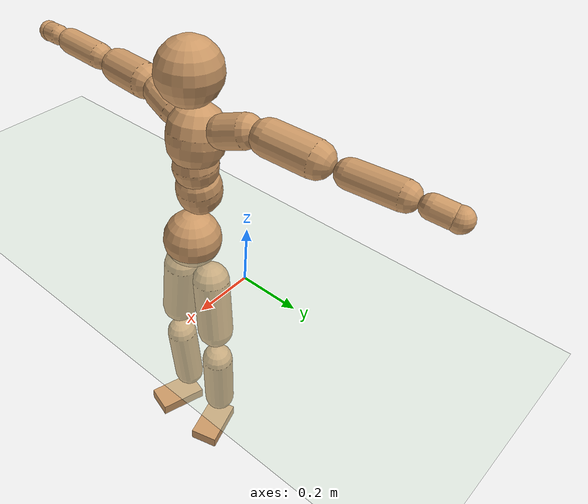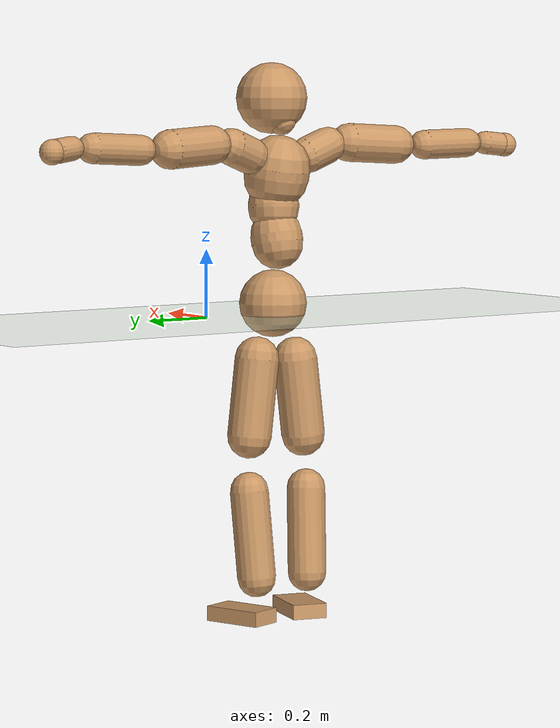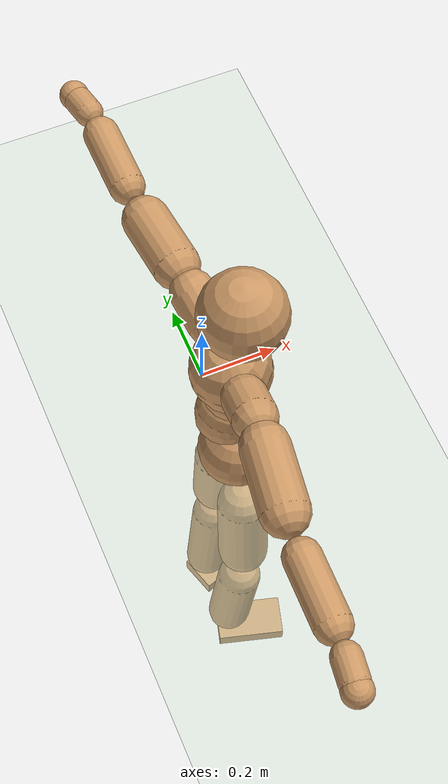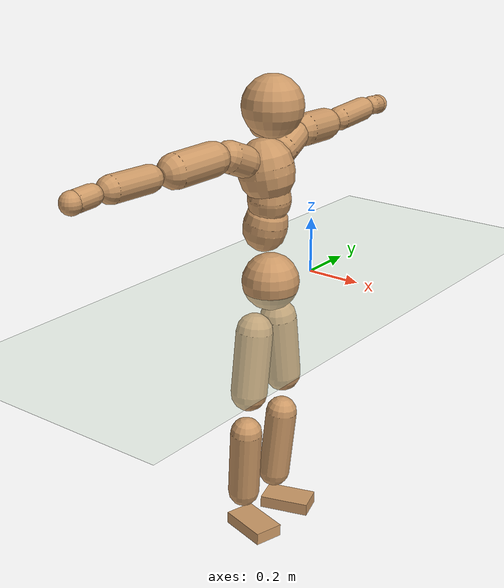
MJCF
<mujoco model="humanoid">
  <compiler coordinate="local"/>
  <default>
    <joint damping="0.0" armature="0.01" stiffness="0.0" limited="true"/>
    <geom conaffinity="1" condim="3" contype="7" margin="0.001" rgba="0.8 0.6 .4 1"/>
  </default>
  <asset>
    <texture type="skybox" builtin="gradient" rgb1=".4 .5 .6" rgb2="0 0 0" width="100" height="100"/>
    <texture builtin="flat" height="1278" mark="cross" markrgb="1 1 1" name="texgeom" random="0.01" rgb1="0.8 0.6 0.4" rgb2="0.8 0.6 0.4" type="cube" width="127"/>
    <texture builtin="checker" height="100" name="texplane" rgb1="0 0 0" rgb2="0.8 0.8 0.8" type="2d" width="100"/>
    <material name="MatPlane" reflectance="0.5" shininess="1" specular="1" texrepeat="60 60" texture="texplane"/>
    <material name="geom" texture="texgeom" texuniform="true"/>
  </asset>
  <worldbody>
    <light cutoff="100" diffuse="1 1 1" dir="-0 0 -1.3" directional="true" exponent="1" pos="0 0 1.3" specular=".1 .1 .1"/>
    <geom conaffinity="1" condim="3" name="floor" pos="0 0 0" rgba="0.8 0.9 0.8 1" size="100 100 .2" type="plane" material="MatPlane"/>
    <body name="Pelvis" pos="-0.0021 -0.2373 0.0321">
      <freejoint name="Pelvis"/>
      <geom type="sphere" contype="1" conaffinity="1" density="500" size="0.1003" pos="0.0000 0.0000 0.0000" name="Pelvis"/>
      <body name="L_Hip" pos="-0.0174 0.0615 -0.083">
        <joint name="L_Hip_x" type="hinge" pos="0 0 0" axis="1 0 0" stiffness="800" damping="80" armature="0.02" range="-180.0000 180.0000"/>
        <joint name="L_Hip_y" type="hinge" pos="0 0 0" axis="0 1 0" stiffness="800" damping="80" armature="0.02" range="-180.0000 180.0000"/>
        <joint name="L_Hip_z" type="hinge" pos="0 0 0" axis="0 0 1" stiffness="800" damping="80" armature="0.02" range="-180.0000 180.0000"/>
        <geom type="capsule" contype="1" conaffinity="1" density="500" fromto="0.0011 0.0084 -0.0768 0.0046 0.0338 -0.3070" size="0.0653" name="L_Hip"/>
        <body name="L_Knee" pos="0.0057 0.0422 -0.3838">
          <joint name="L_Knee_x" type="hinge" pos="0 0 0" axis="1 0 0" stiffness="800" damping="80" armature="0.02" range="-180.0000 180.0000"/>
          <joint name="L_Knee_y" type="hinge" pos="0 0 0" axis="0 1 0" stiffness="800" damping="80" armature="0.02" range="-180.0000 180.0000"/>
          <joint name="L_Knee_z" type="hinge" pos="0 0 0" axis="0 0 1" stiffness="800" damping="80" armature="0.02" range="-180.0000 180.0000"/>
          <geom type="capsule" contype="1" conaffinity="1" density="500" fromto="-0.0078 -0.0031 -0.0856 -0.0313 -0.0126 -0.3425" size="0.0573" name="L_Knee"/>
          <body name="L_Ankle" pos="-0.0391 -0.0157 -0.4281">
            <joint name="L_Ankle_x" type="hinge" pos="0 0 0" axis="1 0 0" stiffness="800" damping="80" armature="0.02" range="-180.0000 180.0000"/>
            <joint name="L_Ankle_y" type="hinge" pos="0 0 0" axis="0 1 0" stiffness="800" damping="80" armature="0.02" range="-180.0000 180.0000"/>
            <joint name="L_Ankle_z" type="hinge" pos="0 0 0" axis="0 0 1" stiffness="800" damping="80" armature="0.02" range="-180.0000 180.0000"/>
            <geom type="box" contype="1" conaffinity="1" density="500" pos="0.0614 0.0191 -0.0300" size="0.0906 0.0513 0.0223" quat="0.9886 0.0000 0.0000 0.1504" name="L_Ankle"/>
            <body name="L_Toe" pos="0.1227 0.0382 -0.06">
              <joint name="L_Toe_x" type="hinge" pos="0 0 0" axis="1 0 0" stiffness="500" damping="50" armature="0.02" range="-180.0000 180.0000"/>
              <joint name="L_Toe_y" type="hinge" pos="0 0 0" axis="0 1 0" stiffness="500" damping="50" armature="0.02" range="-180.0000 180.0000"/>
              <joint name="L_Toe_z" type="hinge" pos="0 0 0" axis="0 0 1" stiffness="500" damping="50" armature="0.02" range="-180.0000 180.0000"/>
              <geom type="box" contype="1" conaffinity="1" density="500" pos="0.0000 0.0000 0.0283" size="0.0011 0.0025 0.001" quat="0.9879 0.0000 0.0000 0.1553" name="L_Toe"/>
            </body>
          </body>
        </body>
      </body>
      <body name="R_Hip" pos="-0.0126 -0.0636 -0.0912">
        <joint name="R_Hip_x" type="hinge" pos="0 0 0" axis="1 0 0" stiffness="800" damping="80" armature="0.02" range="-180.0000 180.0000"/>
        <joint name="R_Hip_y" type="hinge" pos="0 0 0" axis="0 1 0" stiffness="800" damping="80" armature="0.02" range="-180.0000 180.0000"/>
        <joint name="R_Hip_z" type="hinge" pos="0 0 0" axis="0 0 1" stiffness="800" damping="80" armature="0.02" range="-180.0000 180.0000"/>
        <geom type="capsule" contype="1" conaffinity="1" density="500" fromto="-0.0015 -0.0084 -0.0765 -0.0061 -0.0335 -0.3058" size="0.0648" name="R_Hip"/>
        <body name="R_Knee" pos="-0.0076 -0.0419 -0.3823">
          <joint name="R_Knee_x" type="hinge" pos="0 0 0" axis="1 0 0" stiffness="800" damping="80" armature="0.02" range="-180.0000 180.0000"/>
          <joint name="R_Knee_y" type="hinge" pos="0 0 0" axis="0 1 0" stiffness="800" damping="80" armature="0.02" range="-180.0000 180.0000"/>
          <joint name="R_Knee_z" type="hinge" pos="0 0 0" axis="0 0 1" stiffness="800" damping="80" armature="0.02" range="-180.0000 180.0000"/>
          <geom type="capsule" contype="1" conaffinity="1" density="500" fromto="-0.0073 0.0039 -0.0842 -0.0291 0.0157 -0.3368" size="0.0573" name="R_Knee"/>
          <body name="R_Ankle" pos="-0.0363 0.0196 -0.421">
            <joint name="R_Ankle_x" type="hinge" pos="0 0 0" axis="1 0 0" stiffness="800" damping="80" armature="0.02" range="-180.0000 180.0000"/>
            <joint name="R_Ankle_y" type="hinge" pos="0 0 0" axis="0 1 0" stiffness="800" damping="80" armature="0.02" range="-180.0000 180.0000"/>
            <joint name="R_Ankle_z" type="hinge" pos="0 0 0" axis="0 0 1" stiffness="800" damping="80" armature="0.02" range="-180.0000 180.0000"/>
            <geom type="box" contype="1" conaffinity="1" density="500" pos="0.0655 -0.0182 -0.0306" size="0.0912 0.0527 0.0221" quat="0.9909 0.0000 0.0000 -0.1350" name="R_Ankle"/>
            <body name="R_Toe" pos="0.131 -0.0364 -0.0612">
              <joint name="R_Toe_x" type="hinge" pos="0 0 0" axis="1 0 0" stiffness="500" damping="50" armature="0.02" range="-180.0000 180.0000"/>
              <joint name="R_Toe_y" type="hinge" pos="0 0 0" axis="0 1 0" stiffness="500" damping="50" armature="0.02" range="-180.0000 180.0000"/>
              <joint name="R_Toe_z" type="hinge" pos="0 0 0" axis="0 0 1" stiffness="500" damping="50" armature="0.02" range="-180.0000 180.0000"/>
              <geom type="box" contype="1" conaffinity="1" density="500" pos="0.0000 0.0000 0.0301" size="0.0011 0.0026 0.0011" quat="0.9920 0.0000 0.0000 -0.1261" name="R_Toe"/>
            </body>
          </body>
        </body>
      </body>
      <body name="Torso" pos="-0.0415 0.0045 0.1255">
        <joint name="Torso_x" type="hinge" pos="0 0 0" axis="1 0 0" stiffness="1000" damping="100" armature="0.02" range="-180.0000 180.0000"/>
        <joint name="Torso_y" type="hinge" pos="0 0 0" axis="0 1 0" stiffness="1000" damping="100" armature="0.02" range="-180.0000 180.0000"/>
        <joint name="Torso_z" type="hinge" pos="0 0 0" axis="0 0 1" stiffness="1000" damping="100" armature="0.02" range="-180.0000 180.0000"/>
        <geom type="capsule" contype="1" conaffinity="1" density="500" fromto="0.0155 0.0024 0.0815 0.0104 0.0016 0.0543" size="0.076539" name="Torso"/>
        <body name="Spine" pos="0.0259 0.004 0.1359">
          <joint name="Spine_x" type="hinge" pos="0 0 0" axis="1 0 0" stiffness="1000" damping="100" armature="0.02" range="-180.0000 180.0000"/>
          <joint name="Spine_y" type="hinge" pos="0 0 0" axis="0 1 0" stiffness="1000" damping="100" armature="0.02" range="-180.0000 180.0000"/>
          <joint name="Spine_z" type="hinge" pos="0 0 0" axis="0 0 1" stiffness="1000" damping="100" armature="0.02" range="-180.0000 180.0000"/>
          <geom type="capsule" contype="1" conaffinity="1" density="500" fromto="0.0026 -0.0014 0.0331 0.0017 -0.0009 0.0220" size="0.075516" name="Spine"/>
          <body name="Chest" pos="0.0043 -0.0023 0.0551">
            <joint name="Chest_x" type="hinge" pos="0 0 0" axis="1 0 0" stiffness="1000" damping="100" armature="0.02" range="-180.0000 180.0000"/>
            <joint name="Chest_y" type="hinge" pos="0 0 0" axis="0 1 0" stiffness="1000" damping="100" armature="0.02" range="-180.0000 180.0000"/>
            <joint name="Chest_z" type="hinge" pos="0 0 0" axis="0 0 1" stiffness="1000" damping="100" armature="0.02" range="-180.0000 180.0000"/>
            <geom type="capsule" contype="1" conaffinity="1" density="500" fromto="-0.0148 -0.0047 0.0865 -0.0098 -0.0031 0.0577" size="0.096441" name="Chest"/>
            <body name="Neck" pos="-0.0348 -0.0132 0.2074">
              <joint name="Neck_x" type="hinge" pos="0 0 0" axis="1 0 0" stiffness="500" damping="50" armature="0.02" range="-180.0000 180.0000"/>
              <joint name="Neck_y" type="hinge" pos="0 0 0" axis="0 1 0" stiffness="500" damping="50" armature="0.02" range="-180.0000 180.0000"/>
              <joint name="Neck_z" type="hinge" pos="0 0 0" axis="0 0 1" stiffness="500" damping="50" armature="0.02" range="-180.0000 180.0000"/>
              <geom type="capsule" contype="1" conaffinity="1" density="500" fromto="0.0095 0.0021 0.0165 0.0379 0.0082 0.0660" size="0.042408" name="Neck"/>
              <body name="Head" pos="0.0474 0.0103 0.0825">
                <joint name="Head_x" type="hinge" pos="0 0 0" axis="1 0 0" stiffness="500" damping="50" armature="0.02" range="-180.0000 180.0000"/>
                <joint name="Head_y" type="hinge" pos="0 0 0" axis="0 1 0" stiffness="500" damping="50" armature="0.02" range="-180.0000 180.0000"/>
                <joint name="Head_z" type="hinge" pos="0 0 0" axis="0 0 1" stiffness="500" damping="50" armature="0.02" range="-180.0000 180.0000"/>
                <geom type="sphere" contype="1" conaffinity="1" density="500" size="0.1049" pos="0.0000 0.0000 0.0000" name="Head"/>
              </body>
            </body>
            <body name="L_Thorax" pos="-0.0167 0.0736 0.1137">
              <joint name="L_Thorax_x" type="hinge" pos="0 0 0" axis="1 0 0" stiffness="500" damping="50" armature="0.02" range="-180.0000 180.0000"/>
              <joint name="L_Thorax_y" type="hinge" pos="0 0 0" axis="0 1 0" stiffness="500" damping="50" armature="0.02" range="-180.0000 180.0000"/>
              <joint name="L_Thorax_z" type="hinge" pos="0 0 0" axis="0 0 1" stiffness="500" damping="50" armature="0.02" range="-180.0000 180.0000"/>
              <geom type="capsule" contype="1" conaffinity="1" density="500" fromto="-0.0041 0.0251 0.0091 -0.0163 0.1005 0.0366" size="0.0542" name="L_Thorax"/>
              <body name="L_Shoulder" pos="-0.0204 0.1256 0.0457">
                <joint name="L_Shoulder_x" type="hinge" pos="0 0 0" axis="1 0 0" stiffness="500" damping="50" armature="0.02" range="-720.0000 720.0000"/>
                <joint name="L_Shoulder_y" type="hinge" pos="0 0 0" axis="0 1 0" stiffness="500" damping="50" armature="0.02" range="-720.0000 720.0000"/>
                <joint name="L_Shoulder_z" type="hinge" pos="0 0 0" axis="0 0 1" stiffness="500" damping="50" armature="0.02" range="-720.0000 720.0000"/>
                <geom type="capsule" contype="1" conaffinity="1" density="500" fromto="-0.0050 0.0508 -0.0032 -0.0201 0.2032 -0.0127" size="0.0573" name="L_Shoulder"/>
                <body name="L_Elbow" pos="-0.0251 0.254 -0.0159">
                  <joint name="L_Elbow_x" type="hinge" pos="0 0 0" axis="1 0 0" stiffness="500" damping="50" armature="0.02" range="-720.0000 720.0000"/>
                  <joint name="L_Elbow_y" type="hinge" pos="0 0 0" axis="0 1 0" stiffness="500" damping="50" armature="0.02" range="-720.0000 720.0000"/>
                  <joint name="L_Elbow_z" type="hinge" pos="0 0 0" axis="0 0 1" stiffness="500" damping="50" armature="0.02" range="-720.0000 720.0000"/>
                  <geom type="capsule" contype="1" conaffinity="1" density="500" fromto="-0.0013 0.0537 0.0027 -0.0051 0.2150 0.0109" size="0.0438" name="L_Elbow"/>
                  <body name="L_Wrist" pos="-0.0064 0.2687 0.0137">
                    <joint name="L_Wrist_x" type="hinge" pos="0 0 0" axis="1 0 0" stiffness="300" damping="30" armature="0.02" range="-180.0000 180.0000"/>
                    <joint name="L_Wrist_y" type="hinge" pos="0 0 0" axis="0 1 0" stiffness="300" damping="30" armature="0.02" range="-180.0000 180.0000"/>
                    <joint name="L_Wrist_z" type="hinge" pos="0 0 0" axis="0 0 1" stiffness="300" damping="30" armature="0.02" range="-180.0000 180.0000"/>
                    <geom type="capsule" contype="1" conaffinity="1" density="500" fromto="-0.0032 0.0176 -0.0022 -0.0127 0.0704 -0.0087" size="0.0347" name="L_Wrist"/>
                    <body name="L_Hand" pos="-0.0159 0.088 -0.0109">
                      <joint name="L_Hand_x" type="hinge" pos="0 0 0" axis="1 0 0" stiffness="300" damping="30" armature="0.02" range="-180.0000 180.0000"/>
                      <joint name="L_Hand_y" type="hinge" pos="0 0 0" axis="0 1 0" stiffness="300" damping="30" armature="0.02" range="-180.0000 180.0000"/>
                      <joint name="L_Hand_z" type="hinge" pos="0 0 0" axis="0 0 1" stiffness="300" damping="30" armature="0.02" range="-180.0000 180.0000"/>
                      <geom type="sphere" contype="1" conaffinity="1" density="500" size="0.0361" pos="0.0000 0.0000 0.0000" name="L_Hand"/>
                    </body>
                  </body>
                </body>
              </body>
            </body>
            <body name="R_Thorax" pos="-0.0223 -0.0838 0.1117">
              <joint name="R_Thorax_x" type="hinge" pos="0 0 0" axis="1 0 0" stiffness="500" damping="50" armature="0.02" range="-180.0000 180.0000"/>
              <joint name="R_Thorax_y" type="hinge" pos="0 0 0" axis="0 1 0" stiffness="500" damping="50" armature="0.02" range="-180.0000 180.0000"/>
              <joint name="R_Thorax_z" type="hinge" pos="0 0 0" axis="0 0 1" stiffness="500" damping="50" armature="0.02" range="-180.0000 180.0000"/>
              <geom type="capsule" contype="1" conaffinity="1" density="500" fromto="-0.0019 -0.0231 0.0095 -0.0076 -0.0923 0.0381" size="0.0541" name="R_Thorax"/>
              <body name="R_Shoulder" pos="-0.0096 -0.1154 0.0477">
                <joint name="R_Shoulder_x" type="hinge" pos="0 0 0" axis="1 0 0" stiffness="500" damping="50" armature="0.02" range="-720.0000 720.0000"/>
                <joint name="R_Shoulder_y" type="hinge" pos="0 0 0" axis="0 1 0" stiffness="500" damping="50" armature="0.02" range="-720.0000 720.0000"/>
                <joint name="R_Shoulder_z" type="hinge" pos="0 0 0" axis="0 0 1" stiffness="500" damping="50" armature="0.02" range="-720.0000 720.0000"/>
                <geom type="capsule" contype="1" conaffinity="1" density="500" fromto="-0.0069 -0.0520 -0.0028 -0.0277 -0.2081 -0.0111" size="0.0579" name="R_Shoulder"/>
                <body name="R_Elbow" pos="-0.0346 -0.2601 -0.0139">
                  <joint name="R_Elbow_x" type="hinge" pos="0 0 0" axis="1 0 0" stiffness="500" damping="50" armature="0.02" range="-720.0000 720.0000"/>
                  <joint name="R_Elbow_y" type="hinge" pos="0 0 0" axis="0 1 0" stiffness="500" damping="50" armature="0.02" range="-720.0000 720.0000"/>
                  <joint name="R_Elbow_z" type="hinge" pos="0 0 0" axis="0 0 1" stiffness="500" damping="50" armature="0.02" range="-720.0000 720.0000"/>
                  <geom type="capsule" contype="1" conaffinity="1" density="500" fromto="-0.0012 -0.0541 0.0012 -0.0046 -0.2166 0.0046" size="0.0444" name="R_Elbow"/>
                  <body name="R_Wrist" pos="-0.0058 -0.2707 0.0058">
                    <joint name="R_Wrist_x" type="hinge" pos="0 0 0" axis="1 0 0" stiffness="300" damping="30" armature="0.02" range="-180.0000 180.0000"/>
                    <joint name="R_Wrist_y" type="hinge" pos="0 0 0" axis="0 1 0" stiffness="300" damping="30" armature="0.02" range="-180.0000 180.0000"/>
                    <joint name="R_Wrist_z" type="hinge" pos="0 0 0" axis="0 0 1" stiffness="300" damping="30" armature="0.02" range="-180.0000 180.0000"/>
                    <geom type="capsule" contype="1" conaffinity="1" density="500" fromto="-0.0021 -0.0180 -0.0018 -0.0082 -0.0720 -0.0071" size="0.0353" name="R_Wrist"/>
                    <body name="R_Hand" pos="-0.0103 -0.09 -0.0089">
                      <joint name="R_Hand_x" type="hinge" pos="0 0 0" axis="1 0 0" stiffness="300" damping="30" armature="0.02" range="-180.0000 180.0000"/>
                      <joint name="R_Hand_y" type="hinge" pos="0 0 0" axis="0 1 0" stiffness="300" damping="30" armature="0.02" range="-180.0000 180.0000"/>
                      <joint name="R_Hand_z" type="hinge" pos="0 0 0" axis="0 0 1" stiffness="300" damping="30" armature="0.02" range="-180.0000 180.0000"/>
                      <geom type="sphere" contype="1" conaffinity="1" density="500" size="0.0366" pos="0.0000 0.0000 0.0000" name="R_Hand"/>
                    </body>
                  </body>
                </body>
              </body>
            </body>
          </body>
        </body>
      </body>
    </body>
  </worldbody>
  <actuator>
    <motor name="L_Hip_x" joint="L_Hip_x" gear="500"/>
    <motor name="L_Hip_y" joint="L_Hip_y" gear="500"/>
    <motor name="L_Hip_z" joint="L_Hip_z" gear="500"/>
    <motor name="L_Knee_x" joint="L_Knee_x" gear="500"/>
    <motor name="L_Knee_y" joint="L_Knee_y" gear="500"/>
    <motor name="L_Knee_z" joint="L_Knee_z" gear="500"/>
    <motor name="L_Ankle_x" joint="L_Ankle_x" gear="500"/>
    <motor name="L_Ankle_y" joint="L_Ankle_y" gear="500"/>
    <motor name="L_Ankle_z" joint="L_Ankle_z" gear="500"/>
    <motor name="L_Toe_x" joint="L_Toe_x" gear="500"/>
    <motor name="L_Toe_y" joint="L_Toe_y" gear="500"/>
    <motor name="L_Toe_z" joint="L_Toe_z" gear="500"/>
    <motor name="R_Hip_x" joint="R_Hip_x" gear="500"/>
    <motor name="R_Hip_y" joint="R_Hip_y" gear="500"/>
    <motor name="R_Hip_z" joint="R_Hip_z" gear="500"/>
    <motor name="R_Knee_x" joint="R_Knee_x" gear="500"/>
    <motor name="R_Knee_y" joint="R_Knee_y" gear="500"/>
    <motor name="R_Knee_z" joint="R_Knee_z" gear="500"/>
    <motor name="R_Ankle_x" joint="R_Ankle_x" gear="500"/>
    <motor name="R_Ankle_y" joint="R_Ankle_y" gear="500"/>
    <motor name="R_Ankle_z" joint="R_Ankle_z" gear="500"/>
    <motor name="R_Toe_x" joint="R_Toe_x" gear="500"/>
    <motor name="R_Toe_y" joint="R_Toe_y" gear="500"/>
    <motor name="R_Toe_z" joint="R_Toe_z" gear="500"/>
    <motor name="Torso_x" joint="Torso_x" gear="500"/>
    <motor name="Torso_y" joint="Torso_y" gear="500"/>
    <motor name="Torso_z" joint="Torso_z" gear="500"/>
    <motor name="Spine_x" joint="Spine_x" gear="500"/>
    <motor name="Spine_y" joint="Spine_y" gear="500"/>
    <motor name="Spine_z" joint="Spine_z" gear="500"/>
    <motor name="Chest_x" joint="Chest_x" gear="500"/>
    <motor name="Chest_y" joint="Chest_y" gear="500"/>
    <motor name="Chest_z" joint="Chest_z" gear="500"/>
    <motor name="Neck_x" joint="Neck_x" gear="500"/>
    <motor name="Neck_y" joint="Neck_y" gear="500"/>
    <motor name="Neck_z" joint="Neck_z" gear="500"/>
    <motor name="Head_x" joint="Head_x" gear="500"/>
    <motor name="Head_y" joint="Head_y" gear="500"/>
    <motor name="Head_z" joint="Head_z" gear="500"/>
    <motor name="L_Thorax_x" joint="L_Thorax_x" gear="500"/>
    <motor name="L_Thorax_y" joint="L_Thorax_y" gear="500"/>
    <motor name="L_Thorax_z" joint="L_Thorax_z" gear="500"/>
    <motor name="L_Shoulder_x" joint="L_Shoulder_x" gear="500"/>
    <motor name="L_Shoulder_y" joint="L_Shoulder_y" gear="500"/>
    <motor name="L_Shoulder_z" joint="L_Shoulder_z" gear="500"/>
    <motor name="L_Elbow_x" joint="L_Elbow_x" gear="500"/>
    <motor name="L_Elbow_y" joint="L_Elbow_y" gear="500"/>
    <motor name="L_Elbow_z" joint="L_Elbow_z" gear="500"/>
    <motor name="L_Wrist_x" joint="L_Wrist_x" gear="500"/>
    <motor name="L_Wrist_y" joint="L_Wrist_y" gear="500"/>
    <motor name="L_Wrist_z" joint="L_Wrist_z" gear="500"/>
    <motor name="L_Hand_x" joint="L_Hand_x" gear="500"/>
    <motor name="L_Hand_y" joint="L_Hand_y" gear="500"/>
    <motor name="L_Hand_z" joint="L_Hand_z" gear="500"/>
    <motor name="R_Thorax_x" joint="R_Thorax_x" gear="500"/>
    <motor name="R_Thorax_y" joint="R_Thorax_y" gear="500"/>
    <motor name="R_Thorax_z" joint="R_Thorax_z" gear="500"/>
    <motor name="R_Shoulder_x" joint="R_Shoulder_x" gear="500"/>
    <motor name="R_Shoulder_y" joint="R_Shoulder_y" gear="500"/>
    <motor name="R_Shoulder_z" joint="R_Shoulder_z" gear="500"/>
    <motor name="R_Elbow_x" joint="R_Elbow_x" gear="500"/>
    <motor name="R_Elbow_y" joint="R_Elbow_y" gear="500"/>
    <motor name="R_Elbow_z" joint="R_Elbow_z" gear="500"/>
    <motor name="R_Wrist_x" joint="R_Wrist_x" gear="500"/>
    <motor name="R_Wrist_y" joint="R_Wrist_y" gear="500"/>
    <motor name="R_Wrist_z" joint="R_Wrist_z" gear="500"/>
    <motor name="R_Hand_x" joint="R_Hand_x" gear="500"/>
    <motor name="R_Hand_y" joint="R_Hand_y" gear="500"/>
    <motor name="R_Hand_z" joint="R_Hand_z" gear="500"/>
  </actuator>
  <contact>
    <exclude body1="Torso" body2="Chest"/>
    <exclude body1="Head" body2="Chest"/>
    <exclude body1="R_Knee" body2="R_Toe"/>
    <exclude body1="R_Knee" body2="L_Ankle"/>
    <exclude body1="R_Knee" body2="L_Toe"/>
    <exclude body1="L_Knee" body2="L_Toe"/>
    <exclude body1="L_Knee" body2="R_Ankle"/>
    <exclude body1="L_Knee" body2="R_Toe"/>
    <exclude body1="L_Shoulder" body2="Chest"/>
    <exclude body1="R_Shoulder" body2="Chest"/>
  </contact>
  <sensor/>
  <size njmax="700" nconmax="700"/>
</mujoco>
